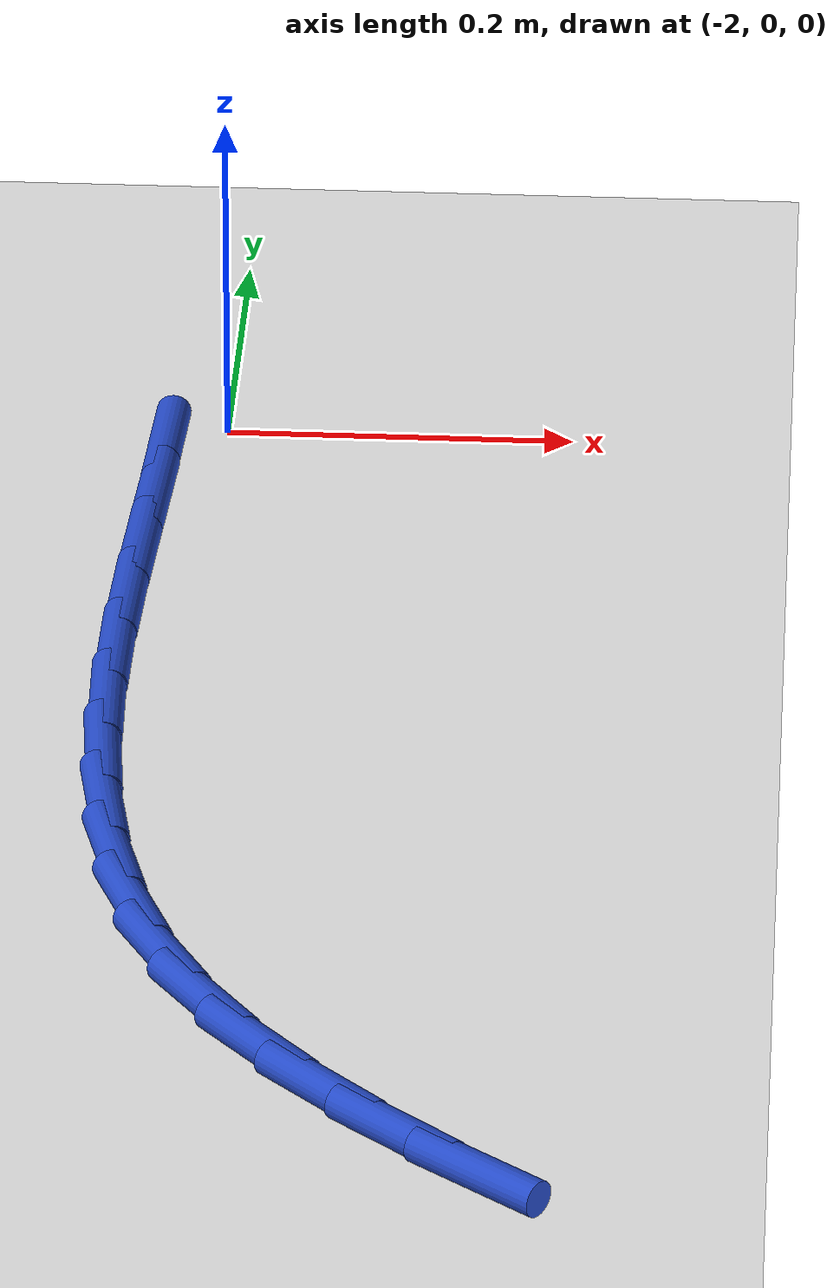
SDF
<sdf version="1.6">
 <world name="default">
  <model name="ground_plane">
   <static>1</static>
   <link name="link">
    <collision name="collision">
     <geometry><plane><normal>0 0 1</normal><size>100 100</size></plane></geometry>
     <surface><friction><ode><mu>100</mu><mu2>50</mu2></ode></friction></surface>
    </collision>
    <visual name="visual">
     <cast_shadows>0</cast_shadows>
     <geometry><plane><normal>0 0 1</normal><size>100 100</size></plane></geometry>
     <material>
      <script><uri>file://media/materials/scripts/gazebo.material</uri><name>Gazebo/WhiteGlow</name></script>
     </material>
    </visual>
   </link>
  </model>
  <model name="line">
   <link name="link_60">
    <pose>-2.03319788433223 -0.032909854165434 0.01 0 1.57 1.5267892016808688</pose>
    <collision name="collision">
     <geometry><cylinder><radius>0.01</radius><length>0.08</length></cylinder></geometry>
    </collision>
    <visual name="visual">
     <material>
      <script><name>Gazebo/Blue</name><uri>file://media/materials/scripts/gazebo.material</uri></script>
     </material>
     <geometry><cylinder><radius>0.01</radius><length>0.08</length></cylinder></geometry>
    </visual>
   </link>
   <link name="link_61">
    <pose>-2.035802718053773 -0.09206282012644348 0.01 0 1.57 1.5180674565656291</pose>
    <collision name="collision">
     <geometry><cylinder><radius>0.01</radius><length>0.08</length></cylinder></geometry>
    </collision>
    <visual name="visual">
     <material>
      <script><name>Gazebo/Blue</name><uri>file://media/materials/scripts/gazebo.material</uri></script>
     </material>
     <geometry><cylinder><radius>0.01</radius><length>0.08</length></cylinder></geometry>
    </visual>
   </link>
   <link name="link_62">
    <pose>-2.038907329804312 -0.15088702625818698 0.01 0 1.57 1.5214418967393364</pose>
    <collision name="collision">
     <geometry><cylinder><radius>0.01</radius><length>0.08</length></cylinder></geometry>
    </collision>
    <visual name="visual">
     <material>
      <script><name>Gazebo/Blue</name><uri>file://media/materials/scripts/gazebo.material</uri></script>
     </material>
     <geometry><cylinder><radius>0.01</radius><length>0.08</length></cylinder></geometry>
    </visual>
   </link>
   <link name="link_63">
    <pose>-2.04178367829123 -0.20911913721195985 0.01 0 1.57 1.537344971802602</pose>
    <collision name="collision">
     <geometry><cylinder><radius>0.01</radius><length>0.08</length></cylinder></geometry>
    </collision>
    <visual name="visual">
     <material>
      <script><name>Gazebo/Blue</name><uri>file://media/materials/scripts/gazebo.material</uri></script>
     </material>
     <geometry><cylinder><radius>0.01</radius><length>0.08</length></cylinder></geometry>
    </visual>
   </link>
   <link name="link_64">
    <pose>-2.0437037222219105 -0.2664958176390551 0.01 0 1.57 1.5666067526759013</pose>
    <collision name="collision">
     <geometry><cylinder><radius>0.01</radius><length>0.08</length></cylinder></geometry>
    </collision>
    <visual name="visual">
     <material>
      <script><name>Gazebo/Blue</name><uri>file://media/materials/scripts/gazebo.material</uri></script>
     </material>
     <geometry><cylinder><radius>0.01</radius><length>0.08</length></cylinder></geometry>
    </visual>
   </link>
   <link name="link_65">
    <pose>-2.0439394203037393 -0.3227537321907682 0.01 0 1.57 -1.5311513825993162</pose>
    <collision name="collision">
     <geometry><cylinder><radius>0.01</radius><length>0.08</length></cylinder></geometry>
    </collision>
    <visual name="visual">
     <material>
      <script><name>Gazebo/Blue</name><uri>file://media/materials/scripts/gazebo.material</uri></script>
     </material>
     <geometry><cylinder><radius>0.01</radius><length>0.08</length></cylinder></geometry>
    </visual>
   </link>
   <link name="link_66">
    <pose>-2.041762731244099 -0.37762954551839456 0.01 0 1.57 -1.4712377924538982</pose>
    <collision name="collision">
     <geometry><cylinder><radius>0.01</radius><length>0.08</length></cylinder></geometry>
    </collision>
    <visual name="visual">
     <material>
      <script><name>Gazebo/Blue</name><uri>file://media/materials/scripts/gazebo.material</uri></script>
     </material>
     <geometry><cylinder><radius>0.01</radius><length>0.08</length></cylinder></geometry>
    </visual>
   </link>
   <link name="link_67">
    <pose>-2.0364456137503746 -0.4308599222732272 0.01 0 1.57 -1.3936906773260163</pose>
    <collision name="collision">
     <geometry><cylinder><radius>0.01</radius><length>0.08</length></cylinder></geometry>
    </collision>
    <visual name="visual">
     <material>
      <script><name>Gazebo/Blue</name><uri>file://media/materials/scripts/gazebo.material</uri></script>
     </material>
     <geometry><cylinder><radius>0.01</radius><length>0.08</length></cylinder></geometry>
    </visual>
   </link>
   <link name="link_68">
    <pose>-2.0272600265299507 -0.4821815271065617 0.01 0 1.57 -1.2974058183980839</pose>
    <collision name="collision">
     <geometry><cylinder><radius>0.01</radius><length>0.08</length></cylinder></geometry>
    </collision>
    <visual name="visual">
     <material>
      <script><name>Gazebo/Blue</name><uri>file://media/materials/scripts/gazebo.material</uri></script>
     </material>
     <geometry><cylinder><radius>0.01</radius><length>0.08</length></cylinder></geometry>
    </visual>
   </link>
   <link name="link_69">
    <pose>-2.0134779282902104 -0.5313310246696923 0.01 0 1.57 -1.1825444456890213</pose>
    <collision name="collision">
     <geometry><cylinder><radius>0.01</radius><length>0.08</length></cylinder></geometry>
    </collision>
    <visual name="visual">
     <material>
      <script><name>Gazebo/Blue</name><uri>file://media/materials/scripts/gazebo.material</uri></script>
     </material>
     <geometry><cylinder><radius>0.01</radius><length>0.08</length></cylinder></geometry>
    </visual>
   </link>
   <link name="link_70">
    <pose>-1.9943712777385385 -0.5780450796139147 0.01 0 1.57 -1.054187189108037</pose>
    <collision name="collision">
     <geometry><cylinder><radius>0.01</radius><length>0.08</length></cylinder></geometry>
    </collision>
    <visual name="visual">
     <material>
      <script><name>Gazebo/Blue</name><uri>file://media/materials/scripts/gazebo.material</uri></script>
     </material>
     <geometry><cylinder><radius>0.01</radius><length>0.08</length></cylinder></geometry>
    </visual>
   </link>
   <link name="link_71">
    <pose>-1.969339585861666 -0.6221096797709353 0.01 0 1.57 -0.9352132305155865</pose>
    <collision name="collision">
     <geometry><cylinder><radius>0.01</radius><length>0.08</length></cylinder></geometry>
    </collision>
    <visual name="visual">
     <material>
      <script><name>Gazebo/Blue</name><uri>file://media/materials/scripts/gazebo.material</uri></script>
     </material>
     <geometry><cylinder><radius>0.01</radius><length>0.08</length></cylinder></geometry>
    </visual>
   </link>
   <link name="link_72">
    <pose>-1.9386873232355617 -0.6636607517216204 0.01 0 1.57 -0.8353915006198146</pose>
    <collision name="collision">
     <geometry><cylinder><radius>0.01</radius><length>0.08</length></cylinder></geometry>
    </collision>
    <visual name="visual">
     <material>
      <script><name>Gazebo/Blue</name><uri>file://media/materials/scripts/gazebo.material</uri></script>
     </material>
     <geometry><cylinder><radius>0.01</radius><length>0.08</length></cylinder></geometry>
    </visual>
   </link>
   <link name="link_73">
    <pose>-1.9031102580967902 -0.7029855329070386 0.01 0 1.57 -0.7540807425445906</pose>
    <collision name="collision">
     <geometry><cylinder><radius>0.01</radius><length>0.08</length></cylinder></geometry>
    </collision>
    <visual name="visual">
     <material>
      <script><name>Gazebo/Blue</name><uri>file://media/materials/scripts/gazebo.material</uri></script>
     </material>
     <geometry><cylinder><radius>0.01</radius><length>0.08</length></cylinder></geometry>
    </visual>
   </link>
   <link name="link_74">
    <pose>-1.8633057177385428 -0.7403718636397386 0.01 0 1.57 -0.6895885925404862</pose>
    <collision name="collision">
     <geometry><cylinder><radius>0.01</radius><length>0.08</length></cylinder></geometry>
    </collision>
    <visual name="visual">
     <material>
      <script><name>Gazebo/Blue</name><uri>file://media/materials/scripts/gazebo.material</uri></script>
     </material>
     <geometry><cylinder><radius>0.01</radius><length>0.08</length></cylinder></geometry>
    </visual>
   </link>
   <link name="link_75">
    <pose>-1.8199710294540103 -0.7761075842322664 0.01 0 1.57 -0.6399890915472729</pose>
    <collision name="collision">
     <geometry><cylinder><radius>0.01</radius><length>0.08</length></cylinder></geometry>
    </collision>
    <visual name="visual">
     <material>
      <script><name>Gazebo/Blue</name><uri>file://media/materials/scripts/gazebo.material</uri></script>
     </material>
     <geometry><cylinder><radius>0.01</radius><length>0.08</length></cylinder></geometry>
    </visual>
   </link>
  </model>
 </world>
</sdf>
